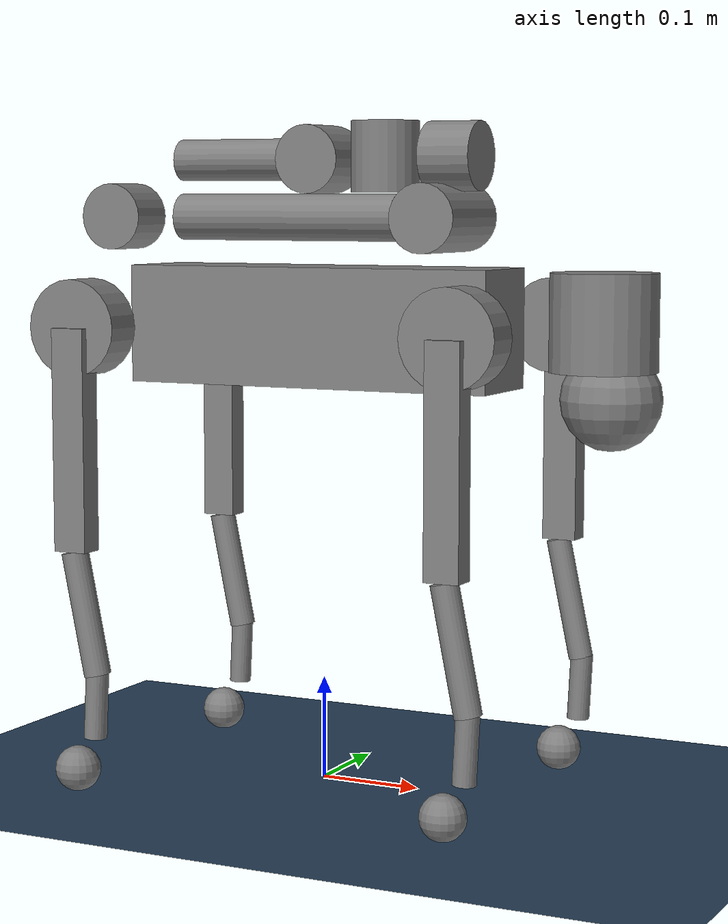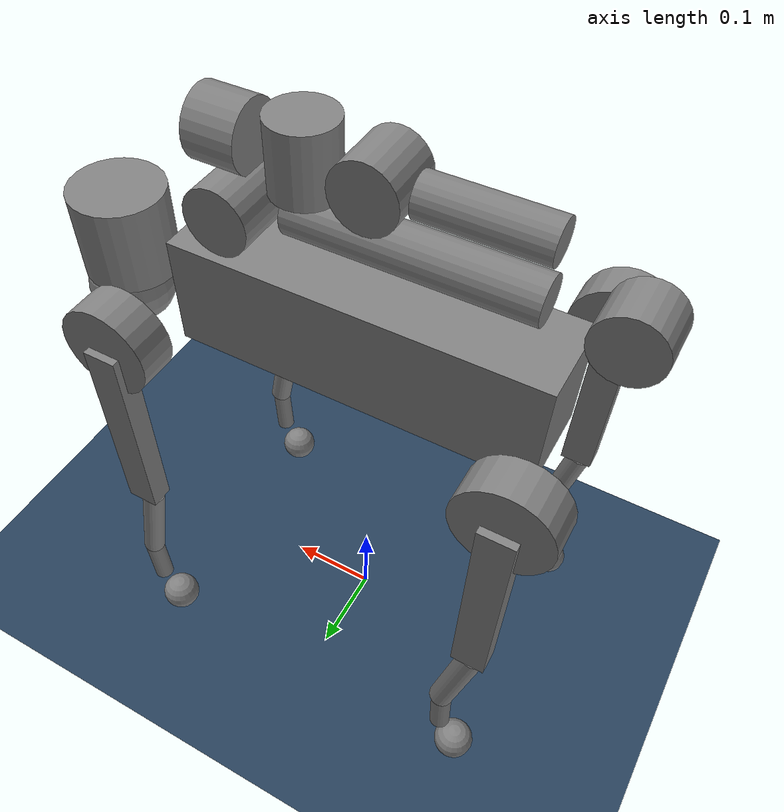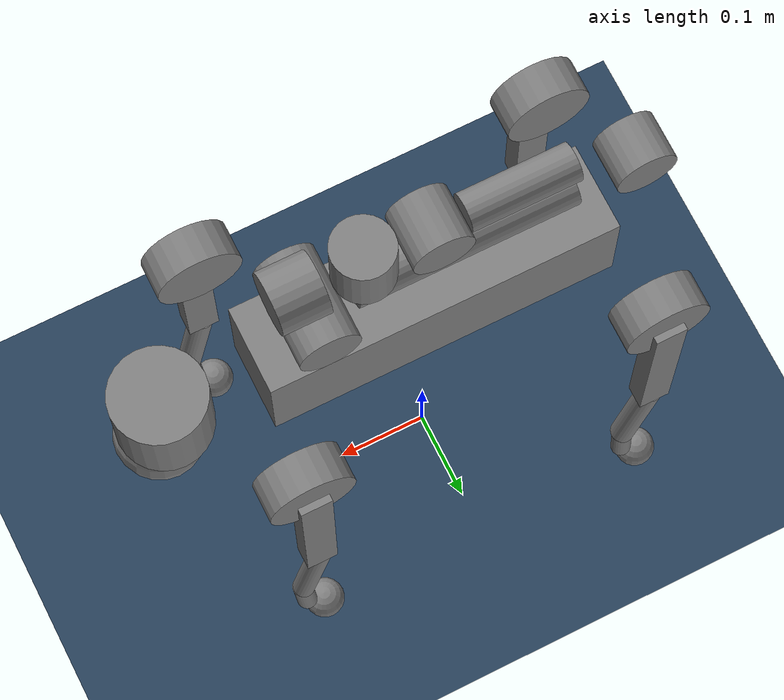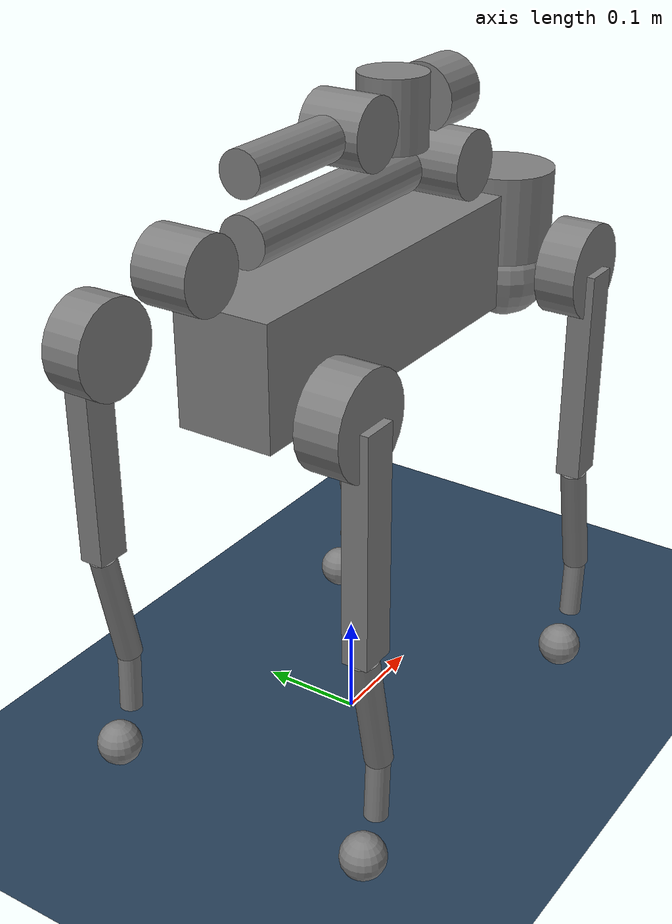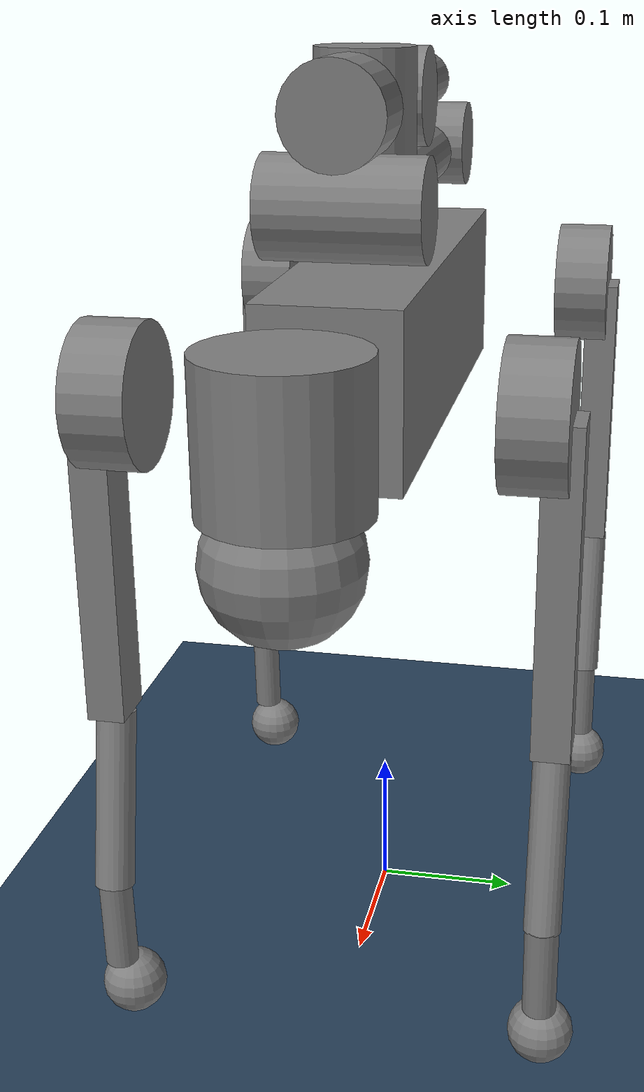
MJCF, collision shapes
<mujoco model="go2_z1 scene">
  <include file="go2_z1.xml"/>

  <visual>
    <headlight diffuse="0.6 0.6 0.6" ambient="0.3 0.3 0.3" specular="0 0 0"/>
    <rgba haze="0.15 0.25 0.35 1"/>
    <global azimuth="120" elevation="-20"/>
  </visual>

  <asset>
    <texture type="skybox" builtin="gradient" rgb1="0.3 0.5 0.7" rgb2="0 0 0" width="512" height="3072"/>
    <texture type="2d" name="groundplane" builtin="checker" mark="edge" rgb1="0.2 0.3 0.4" rgb2="0.1 0.2 0.3"
      markrgb="0.8 0.8 0.8" width="300" height="300"/>
    <material name="groundplane" texture="groundplane" texuniform="true" texrepeat="5 5" reflectance="0.2"/>
  </asset>

  <worldbody>
    <light pos="0 0 1.5" dir="0 0 -1" directional="true"/>
    <geom name="floor" size="0 0 0.05" type="plane" material="groundplane"/>
  </worldbody>
</mujoco>

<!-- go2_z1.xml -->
<mujoco model="go2_z1">
  <compiler angle="radian" meshdir="assets" autolimits="true" />
  <option cone="elliptic" impratio="100" />

  <default>
    <default class="z1">
      <joint damping="1" frictionloss="1"/>
      <general biastype="affine" gainprm="1000" biasprm="0 -1000 -100" forcerange="-30 30"/>
      <default class="z1_visual">
        <geom type="mesh" group="2" contype="0" conaffinity="0"/>
      </default>
      <default class="z1_collision">
        <geom type="cylinder" group="3" mass="0" density="0"/>
      </default>
    </default>

    <default class="go2">
      <geom friction="0.4" margin="0.001" condim="1"/>
      <joint axis="0 1 0" damping="0.1" armature="0.01" frictionloss="0.2"/>
      <motor ctrlrange="-23.7 23.7"/>
      <default class="go2_abduction">
        <joint axis="1 0 0" range="-1.0472 1.0472"/>
      </default>
      <default class="hip">
        <default class="front_hip">
          <joint range="-1.5708 3.4907"/>
        </default>
        <default class="back_hip">
          <joint range="-0.5236 4.5379"/>
        </default>
      </default>
      <default class="knee">
        <joint range="-2.7227 -0.83776"/>
        <motor ctrlrange="-45.43 45.43"/>
      </default>
      <default class="go2_visual">
        <geom type="mesh" contype="0" conaffinity="0" group="2"/>
      </default>
      <default class="go2_collision">
        <geom group="3"/>
        <default class="foot">
          <geom type="sphere" size="0.022" pos="-0.002 0 -0.213" priority="1" condim="6"
            friction="0.7 0.02 0.01"/>
        </default>
      </default>
    </default>
  </default>

  <asset>
    <material name="metal" rgba=".9 .95 .95 1" />
    <material name="black" rgba="0 0 0 1" />
    <material name="white" rgba="1 1 1 1" />
    <material name="gray" rgba="0.671705 0.692426 0.774270 1" />
    <material name="transparent" rgba="1 1 1 0.01" />

    <mesh file="go2/base_0.obj" />
    <mesh file="go2/base_1.obj" />
    <mesh file="go2/base_2.obj" />
    <mesh file="go2/base_3.obj" />
    <mesh file="go2/base_4.obj" />
    <mesh file="go2/hip_0.obj" />
    <mesh file="go2/hip_1.obj" />
    <mesh file="go2/thigh_0.obj" />
    <mesh file="go2/thigh_1.obj" />
    <mesh file="go2/thigh_mirror_0.obj" />
    <mesh file="go2/thigh_mirror_1.obj" />
    <mesh file="go2/calf_0.obj" />
    <mesh file="go2/calf_1.obj" />
    <mesh file="go2/calf_mirror_0.obj" />
    <mesh file="go2/calf_mirror_1.obj" />
    <mesh file="go2/foot.obj" />

    <mesh file="z1/z1_Link00.stl"/>
    <mesh file="z1/z1_Link01.stl"/>
    <mesh file="z1/z1_Link02.stl"/>
    <mesh file="z1/z1_Link03.stl"/>
    <mesh file="z1/z1_Link04.stl"/>
    <mesh file="z1/z1_Link05.stl"/>
    <mesh file="z1/z1_Link06.stl"/>
  </asset>

  <worldbody>
    <body name="base_link" pos="0 0 0.445" childclass="go2">
      <inertial pos="0.021112 0 -0.005366" quat="-0.000543471 0.713435 -0.00173769 0.700719"
        mass="6.921"
        diaginertia="0.107027 0.0980771 0.0244531" />
      <freejoint />
      <geom mesh="base_0" material="black" class="go2_visual" />
      <geom mesh="base_1" material="black" class="go2_visual" />
      <geom mesh="base_2" material="black" class="go2_visual" />
      <geom mesh="base_3" material="white" class="go2_visual" />
      <geom mesh="base_4" material="gray" class="go2_visual" />
      <geom size="0.1881 0.04675 0.057" type="box" class="go2_collision" />
      <geom size="0.05 0.045" pos="0.285 0 0.01" type="cylinder" class="go2_collision" />
      <geom size="0.047" pos="0.293 0 -0.06" class="go2_collision" />
      <site name="imu" pos="-0.02557 0 0.04232" />
      <body name="FL_hip" pos="0.1934 0.0465 0">
        <inertial pos="-0.0054 0.00194 -0.000105" quat="0.497014 0.499245 0.505462 0.498237"
          mass="0.678"
          diaginertia="0.00088403 0.000596003 0.000479967" />
        <joint name="FL_hip_joint" class="go2_abduction" />
        <geom mesh="hip_0" material="metal" class="go2_visual" />
        <geom mesh="hip_1" material="gray" class="go2_visual" />
        <geom size="0.046 0.02" pos="0 0.08 0" quat="1 1 0 0" type="cylinder" class="go2_collision" />
        <body name="FL_thigh" pos="0 0.0955 0">
          <inertial pos="-0.00374 -0.0223 -0.0327" quat="0.829533 0.0847635 -0.0200632 0.551623"
            mass="1.152"
            diaginertia="0.00594973 0.00584149 0.000878787" />
          <joint name="FL_thigh_joint" class="front_hip" />
          <geom mesh="thigh_0" material="metal" class="go2_visual" />
          <geom mesh="thigh_1" material="gray" class="go2_visual" />
          <geom size="0.1065 0.01225 0.017" pos="0 0 -0.1065" quat="0.707107 0 0.707107 0"
            type="box" class="go2_collision" />
          <body name="FL_calf" pos="0 0 -0.213">
            <inertial pos="0.00629595 -0.000622121 -0.141417"
              quat="0.710672 0.00154099 -0.00450087 0.703508"
              mass="0.241352" diaginertia="0.0014901 0.00146356 5.31397e-05" />
            <joint name="FL_calf_joint" class="knee" />
            <geom mesh="calf_0" material="gray" class="go2_visual" />
            <geom mesh="calf_1" material="black" class="go2_visual" />
            <geom size="0.012 0.06" pos="0.008 0 -0.06" quat="0.994493 0 -0.104807 0"
              type="cylinder" class="go2_collision" />
            <geom size="0.011 0.0325" pos="0.02 0 -0.148" quat="0.999688 0 0.0249974 0"
              type="cylinder" class="go2_collision" />
            <geom pos="0 0 -0.213" mesh="foot" class="go2_visual" material="black" />
            <geom name="FL" class="foot" />
            <site name="FL_touch" pos="0 0 -0.213" size="0.027" material="transparent"/>
            <body name="FL_foot" pos="0 0 -0.213"/>
          </body>
        </body>
      </body>
      <body name="FR_hip" pos="0.1934 -0.0465 0">
        <inertial pos="-0.0054 -0.00194 -0.000105" quat="0.498237 0.505462 0.499245 0.497014"
          mass="0.678"
          diaginertia="0.00088403 0.000596003 0.000479967" />
        <joint name="FR_hip_joint" class="go2_abduction" />
        <geom mesh="hip_0" material="metal" class="go2_visual" quat="4.63268e-05 1 0 0" />
        <geom mesh="hip_1" material="gray" class="go2_visual" quat="4.63268e-05 1 0 0" />
        <geom size="0.046 0.02" pos="0 -0.08 0" quat="0.707107 0.707107 0 0" type="cylinder"
          class="go2_collision" />
        <body name="FR_thigh" pos="0 -0.0955 0">
          <inertial pos="-0.00374 0.0223 -0.0327" quat="0.551623 -0.0200632 0.0847635 0.829533"
            mass="1.152"
            diaginertia="0.00594973 0.00584149 0.000878787" />
          <joint name="FR_thigh_joint" class="front_hip" />
          <geom mesh="thigh_mirror_0" material="metal" class="go2_visual" />
          <geom mesh="thigh_mirror_1" material="gray" class="go2_visual" />
          <geom size="0.1065 0.01225 0.017" pos="0 0 -0.1065" quat="0.707107 0 0.707107 0"
            type="box" class="go2_collision" />
          <body name="FR_calf" pos="0 0 -0.213">
            <inertial pos="0.00629595 0.000622121 -0.141417"
              quat="0.703508 -0.00450087 0.00154099 0.710672"
              mass="0.241352" diaginertia="0.0014901 0.00146356 5.31397e-05" />
            <joint name="FR_calf_joint" class="knee" />
            <geom mesh="calf_mirror_0" material="gray" class="go2_visual" />
            <geom mesh="calf_mirror_1" material="black" class="go2_visual" />
            <geom size="0.013 0.06" pos="0.01 0 -0.06" quat="0.995004 0 -0.0998334 0"
              type="cylinder" class="go2_collision" />
            <geom size="0.011 0.0325" pos="0.02 0 -0.148" quat="0.999688 0 0.0249974 0"
              type="cylinder" class="go2_collision" />
            <geom pos="0 0 -0.213" mesh="foot" class="go2_visual" material="black" />
            <geom name="FR" class="foot" />
            <site name="FR_touch" pos="0 0 -0.213" size="0.027" material="transparent"/>
            <body name="FR_foot" pos="0 0 -0.213"/>
          </body>
        </body>
      </body>
      <body name="RL_hip" pos="-0.1934 0.0465 0">
        <inertial pos="0.0054 0.00194 -0.000105" quat="0.505462 0.498237 0.497014 0.499245"
          mass="0.678"
          diaginertia="0.00088403 0.000596003 0.000479967" />
        <joint name="RL_hip_joint" class="go2_abduction" />
        <geom mesh="hip_0" material="metal" class="go2_visual" quat="4.63268e-05 0 1 0" />
        <geom mesh="hip_1" material="gray" class="go2_visual" quat="4.63268e-05 0 1 0" />
        <geom size="0.046 0.02" pos="0 0.08 0" quat="0.707107 0.707107 0 0" type="cylinder"
          class="go2_collision" />
        <body name="RL_thigh" pos="0 0.0955 0">
          <inertial pos="-0.00374 -0.0223 -0.0327" quat="0.829533 0.0847635 -0.0200632 0.551623"
            mass="1.152"
            diaginertia="0.00594973 0.00584149 0.000878787" />
          <joint name="RL_thigh_joint" class="back_hip" />
          <geom mesh="thigh_0" material="metal" class="go2_visual" />
          <geom mesh="thigh_1" material="gray" class="go2_visual" />
          <geom size="0.1065 0.01225 0.017" pos="0 0 -0.1065" quat="0.707107 0 0.707107 0"
            type="box" class="go2_collision" />
          <body name="RL_calf" pos="0 0 -0.213">
            <inertial pos="0.00629595 -0.000622121 -0.141417"
              quat="0.710672 0.00154099 -0.00450087 0.703508"
              mass="0.241352" diaginertia="0.0014901 0.00146356 5.31397e-05" />
            <joint name="RL_calf_joint" class="knee" />
            <geom mesh="calf_0" material="gray" class="go2_visual" />
            <geom mesh="calf_1" material="black" class="go2_visual" />
            <geom size="0.013 0.06" pos="0.01 0 -0.06" quat="0.995004 0 -0.0998334 0"
              type="cylinder" class="go2_collision" />
            <geom size="0.011 0.0325" pos="0.02 0 -0.148" quat="0.999688 0 0.0249974 0"
              type="cylinder" class="go2_collision" />
            <geom pos="0 0 -0.213" mesh="foot" class="go2_visual" material="black" />
            <geom name="RL" class="foot" />
            <site name="RL_touch" pos="0 0 -0.213" size="0.027" material="transparent"/>
            <body name="RL_foot" pos="0 0 -0.213" />
          </body>
        </body>
      </body>
      <body name="RR_hip" pos="-0.1934 -0.0465 0">
        <inertial pos="0.0054 -0.00194 -0.000105" quat="0.499245 0.497014 0.498237 0.505462"
          mass="0.678"
          diaginertia="0.00088403 0.000596003 0.000479967" />
        <joint name="RR_hip_joint" class="go2_abduction" />
        <geom mesh="hip_0" material="metal" class="go2_visual"
          quat="2.14617e-09 4.63268e-05 4.63268e-05 -1" />
        <geom mesh="hip_1" material="gray" class="go2_visual"
          quat="2.14617e-09 4.63268e-05 4.63268e-05 -1" />
        <geom size="0.046 0.02" pos="0 -0.08 0" quat="0.707107 0.707107 0 0" type="cylinder"
          class="go2_collision" />
        <body name="RR_thigh" pos="0 -0.0955 0">
          <inertial pos="-0.00374 0.0223 -0.0327" quat="0.551623 -0.0200632 0.0847635 0.829533"
            mass="1.152"
            diaginertia="0.00594973 0.00584149 0.000878787" />
          <joint name="RR_thigh_joint" class="back_hip" />
          <geom mesh="thigh_mirror_0" material="metal" class="go2_visual" />
          <geom mesh="thigh_mirror_1" material="gray" class="go2_visual" />
          <geom size="0.1065 0.01225 0.017" pos="0 0 -0.1065" quat="0.707107 0 0.707107 0"
            type="box" class="go2_collision" />
          <body name="RR_calf" pos="0 0 -0.213">
            <inertial pos="0.00629595 0.000622121 -0.141417"
              quat="0.703508 -0.00450087 0.00154099 0.710672"
              mass="0.241352" diaginertia="0.0014901 0.00146356 5.31397e-05" />
            <joint name="RR_calf_joint" class="knee" />
            <geom mesh="calf_mirror_0" material="gray" class="go2_visual" />
            <geom mesh="calf_mirror_1" material="black" class="go2_visual" />
            <geom size="0.013 0.06" pos="0.01 0 -0.06" quat="0.995004 0 -0.0998334 0"
              type="cylinder" class="go2_collision" />
            <geom size="0.011 0.0325" pos="0.02 0 -0.148" quat="0.999688 0 0.0249974 0"
              type="cylinder" class="go2_collision" />
            <geom pos="0 0 -0.213" mesh="foot" class="go2_visual" material="black" />
            <geom name="RR" class="foot" />
            <site name="RR_touch" pos="0 0 -0.213" size="0.027" material="transparent"/>
            <body name="RR_foot" pos="0 0 -0.213"/>
          </body>
        </body>
      </body>
      <body name="link00"  pos="0.125 0 0" childclass="z1">
      <inertial pos="-0.00334984 -0.00013615 0.0249584" quat="-0.00692194 0.682592 0.00133293 0.730766" mass="0.472475"
        diaginertia="0.000531375 0.000415207 0.000378658"/>
      <geom class="z1_visual" mesh="z1_Link00" material="gray" />
      <geom size="0.0325 0.0255" pos="0 0 0.0255" class="z1_collision"/>
      <body name="link01" pos="0 0 0.0585">
        <inertial pos="2.47e-06 -0.00025198 0.0231717" quat="0.708578 0.705633 0.000281462 -0.000355927" mass="0.673326"
          diaginertia="0.00128328 0.000839362 0.000719308"/>
        <joint name="z1_joint1" axis="0 0 1" range="-2.61799 2.61799"/>
        <geom class="z1_visual" mesh="z1_Link01" material="gray"/>
        <body name="link02" pos="0 0 0.045">
          <inertial pos="-0.110126 0.00240029 0.00158266" quat="0.00748058 0.707092 -0.0114473 0.70699" mass="1.19132"
            diaginertia="0.0246612 0.0243113 0.00100468"/>
          <joint name="z1_joint2" axis="0 1 0" range="0 2.96706" damping="2"/>
          <geom class="z1_visual" mesh="z1_Link02" material="white"/>
          <geom size="0.0325 0.051" quat="1 1 0 0" class="z1_collision"/>
          <geom size="0.0225 0.1175" pos="-0.1625 0 0" quat="1 0 1 0" class="z1_collision"/>
          <geom size="0.0325 0.0255" pos="-0.35 0 0" quat="1 1 0 0" class="z1_collision"/>
          <body name="link03" pos="-0.35 0 0">
            <inertial pos="0.106092 -0.00541815 0.0347638" quat="0.540557 0.443575 0.426319 0.573839" mass="0.839409"
              diaginertia="0.00954365 0.00938711 0.000558432"/>
            <joint name="z1_joint3" axis="0 1 0" range="-2.87979 0"/>
            <geom class="z1_visual" mesh="z1_Link03" material="white"/>
            <geom size="0.02 0.058" pos="0.128 0 0.055" quat="1 0 1 0" class="z1_collision"/>
            <geom size="0.0325 0.0295" pos="0.2205 0 0.055" quat="0.5 -0.5 0.5 0.5" class="z1_collision"/>
            <body name="link04" pos="0.218 0 0.057">
              <inertial pos="0.0436668 0.00364738 -0.00170192" quat="0.0390835 0.726445 -0.0526787 0.684087"
                mass="0.564046" diaginertia="0.000981656 0.00094053 0.000302655"/>
              <joint name="z1_joint4" axis="0 1 0" range="-1.51844 1.51844"/>
              <geom class="z1_visual" mesh="z1_Link04" material="white"/>
              <geom size="0.0325 0.0335" pos="0.072 0 0" class="z1_collision"/>
              <body name="link05" pos="0.07 0 0">
                <inertial pos="0.0312153 0 0.00646316" quat="0.462205 0.535209 0.53785 0.45895" mass="0.389385"
                  diaginertia="0.000558961 0.000547317 0.000167332"/>
                <joint name="z1_joint5" axis="0 0 1" range="-1.3439 1.3439"/>
                <geom class="z1_visual" mesh="z1_Link05" material="white"/>
                <body name="link06" pos="0.0492 0 0">
                  <inertial pos="0.0241569 -0.00017355 -0.00143876" quat="0.998779 0.0457735 -0.00663717 0.0173548"
                    mass="0.288758" diaginertia="0.00018333 0.000147464 0.000146786"/>
                  <joint name="z1_joint6" axis="1 0 0" range="-2.79253 2.79253"/>
                  <geom class="z1_visual" mesh="z1_Link06" material="gray"/>
                  <geom size="0.0325 0.0255" pos="0.0255 0 0" quat="1 0 1 0" class="z1_collision"/>
                </body>
              </body>
            </body>
          </body>
        </body>
      </body>
    </body>

    </body>
  </worldbody>

  <actuator>
   <motor class="go2_abduction" name="FR_hip" joint="FR_hip_joint" />
    <motor class="hip" name="FR_thigh" joint="FR_thigh_joint" />
    <motor class="knee" name="FR_calf" joint="FR_calf_joint" />
    <motor class="go2_abduction" name="FL_hip" joint="FL_hip_joint" />
    <motor class="hip" name="FL_thigh" joint="FL_thigh_joint" />
    <motor class="knee" name="FL_calf" joint="FL_calf_joint" />
    <motor class="go2_abduction" name="RR_hip" joint="RR_hip_joint" />
    <motor class="hip" name="RR_thigh" joint="RR_thigh_joint" />
    <motor class="knee" name="RR_calf" joint="RR_calf_joint" />
    <motor class="go2_abduction" name="RL_hip" joint="RL_hip_joint" />
    <motor class="hip" name="RL_thigh" joint="RL_thigh_joint" />
    <motor class="knee" name="RL_calf" joint="RL_calf_joint" />
    <motor name="z1_motor1" joint="z1_joint1" gear='1' ctrlrange="-30 30" />
    <motor name="z1_motor2" joint="z1_joint2" gear='1' ctrlrange="-60 60" />
    <motor name="z1_motor3" joint="z1_joint3" gear='1' ctrlrange="-30 30" />
    <motor name="z1_motor4" joint="z1_joint4" gear='1' ctrlrange="-30 30" />
    <motor name="z1_motor5" joint="z1_joint5" gear='1' ctrlrange="-30 30" />
    <motor name="z1_motor6" joint="z1_joint6" gear='1' ctrlrange="-30 30" />
  </actuator>

  <sensor>
    <jointpos name="FR_hip_pos" joint="FR_hip_joint" />
    <jointpos name="FR_thigh_pos" joint="FR_thigh_joint" />
    <jointpos name="FR_calf_pos" joint="FR_calf_joint" />
    <jointpos name="FL_hip_pos" joint="FL_hip_joint" />
    <jointpos name="FL_thigh_pos" joint="FL_thigh_joint" />
    <jointpos name="FL_calf_pos" joint="FL_calf_joint" />
    <jointpos name="RR_hip_pos" joint="RR_hip_joint" />
    <jointpos name="RR_thigh_pos" joint="RR_thigh_joint" />
    <jointpos name="RR_calf_pos" joint="RR_calf_joint" />
    <jointpos name="RL_hip_pos" joint="RL_hip_joint" />
    <jointpos name="RL_thigh_pos" joint="RL_thigh_joint" />
    <jointpos name="RL_calf_pos" joint="RL_calf_joint" />

    <jointpos name="z1_joint1_pos" joint="z1_joint1" />
    <jointpos name="z1_joint2_pos" joint="z1_joint2" />
    <jointpos name="z1_joint3_pos" joint="z1_joint3" />
    <jointpos name="z1_joint4_pos" joint="z1_joint4" />
    <jointpos name="z1_joint5_pos" joint="z1_joint5" />
    <jointpos name="z1_joint6_pos" joint="z1_joint6" />

    <jointvel name="FR_hip_vel" joint="FR_hip_joint" />
    <jointvel name="FR_thigh_vel" joint="FR_thigh_joint" />
    <jointvel name="FR_calf_vel" joint="FR_calf_joint" />
    <jointvel name="FL_hip_vel" joint="FL_hip_joint" />
    <jointvel name="FL_thigh_vel" joint="FL_thigh_joint" />
    <jointvel name="FL_calf_vel" joint="FL_calf_joint" />
    <jointvel name="RR_hip_vel" joint="RR_hip_joint" />
    <jointvel name="RR_thigh_vel" joint="RR_thigh_joint" />
    <jointvel name="RR_calf_vel" joint="RR_calf_joint" />
    <jointvel name="RL_hip_vel" joint="RL_hip_joint" />
    <jointvel name="RL_thigh_vel" joint="RL_thigh_joint" />
    <jointvel name="RL_calf_vel" joint="RL_calf_joint" />

    <jointvel name="z1_joint1_vel" joint="z1_joint1" />
    <jointvel name="z1_joint2_vel" joint="z1_joint2" />
    <jointvel name="z1_joint3_vel" joint="z1_joint3" />
    <jointvel name="z1_joint4_vel" joint="z1_joint4" />
    <jointvel name="z1_joint5_vel" joint="z1_joint5" />
    <jointvel name="z1_joint6_vel" joint="z1_joint6" />

    <jointactuatorfrc name="FR_hip_torque" joint="FR_hip_joint" noise="0.01" />
    <jointactuatorfrc name="FR_thigh_torque" joint="FR_thigh_joint" noise="0.01" />
    <jointactuatorfrc name="FR_calf_torque" joint="FR_calf_joint" noise="0.01" />
    <jointactuatorfrc name="FL_hip_torque" joint="FL_hip_joint" noise="0.01" />
    <jointactuatorfrc name="FL_thigh_torque" joint="FL_thigh_joint" noise="0.01" />
    <jointactuatorfrc name="FL_calf_torque" joint="FL_calf_joint" noise="0.01" />
    <jointactuatorfrc name="RR_hip_torque" joint="RR_hip_joint" noise="0.01" />
    <jointactuatorfrc name="RR_thigh_torque" joint="RR_thigh_joint" noise="0.01" />
    <jointactuatorfrc name="RR_calf_torque" joint="RR_calf_joint" noise="0.01" />
    <jointactuatorfrc name="RL_hip_torque" joint="RL_hip_joint" noise="0.01" />
    <jointactuatorfrc name="RL_thigh_torque" joint="RL_thigh_joint" noise="0.01" />
    <jointactuatorfrc name="RL_calf_torque" joint="RL_calf_joint" noise="0.01" />

    <jointactuatorfrc name="z1_joint1_torque" joint="z1_joint1"  noise="0.01" />
    <jointactuatorfrc name="z1_joint2_torque" joint="z1_joint2"  noise="0.01" />
    <jointactuatorfrc name="z1_joint3_torque" joint="z1_joint3"  noise="0.01" />
    <jointactuatorfrc name="z1_joint4_torque" joint="z1_joint4"  noise="0.01" />
    <jointactuatorfrc name="z1_joint5_torque" joint="z1_joint5"  noise="0.01" />
    <jointactuatorfrc name="z1_joint6_torque" joint="z1_joint6"  noise="0.01" />

    <framequat name="imu_quat" objtype="site" objname="imu" />
    <gyro name="imu_gyro" site="imu" />
    <accelerometer name="imu_acc" site="imu" />

    <framepos name="frame_pos" objtype="site" objname="imu" />
    <framelinvel name="frame_vel" objtype="site" objname="imu" />

    <touch name="FR_touch" site="FR_touch" />
    <touch name="FL_touch" site="FL_touch" />
    <touch name="RR_touch" site="RR_touch" />
    <touch name="RL_touch" site="RL_touch" />
  </sensor>

  <keyframe>
    <key name="home" qpos="0 0.785 -0.261 -0.523 0 0" ctrl="0 0.785 -0.261 -0.523 0 0"/>
  </keyframe>
</mujoco>
